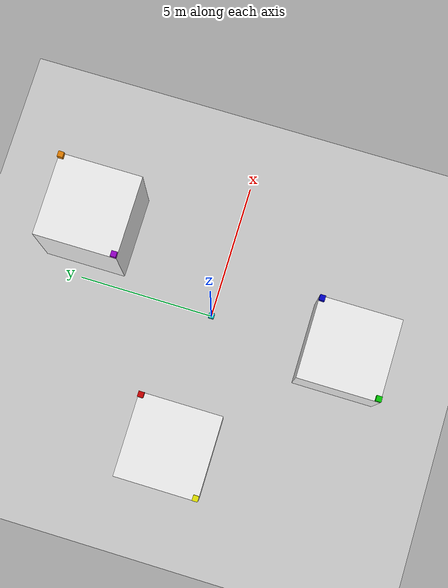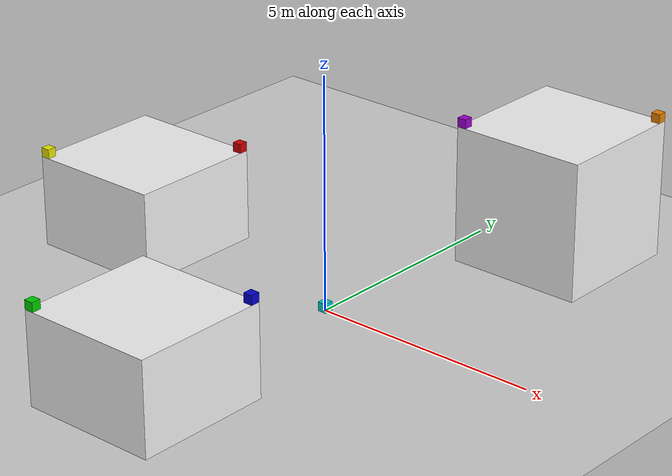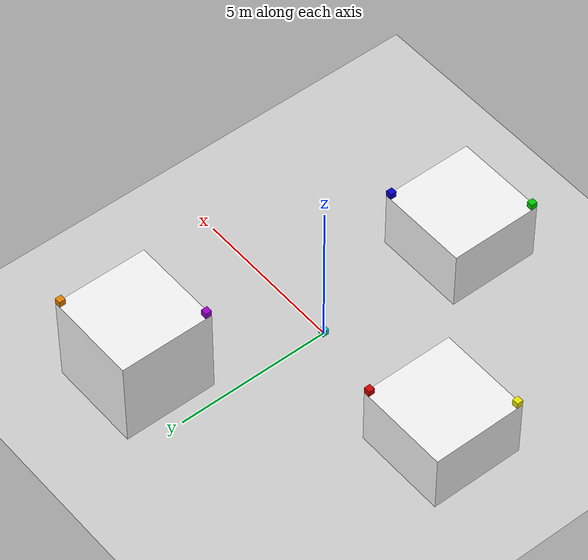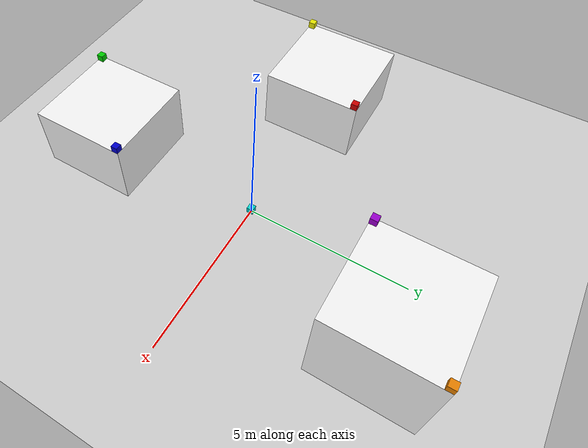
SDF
<?xml version="1.0" ?>

<sdf version="1.6">
  <world name="world_problem3">
    <physics name="4ms" type="ignored">
      <max_step_size>0.004</max_step_size>
      <real_time_factor>1.0</real_time_factor>
    </physics>
    <plugin
      filename="ignition-gazebo-physics-system"
      name="ignition::gazebo::systems::Physics">
    </plugin>
    <plugin
      filename="ignition-gazebo-scene-broadcaster-system"
      name="ignition::gazebo::systems::SceneBroadcaster">
    </plugin>
    <plugin
      filename="ignition-gazebo-user-commands-system"
      name="ignition::gazebo::systems::UserCommands">
    </plugin>
    <plugin
      filename="ignition-gazebo-sensors-system"
      name="ignition::gazebo::systems::Sensors">
      <render_engine>ogre2</render_engine>
    </plugin>
    <plugin
      filename="ignition-gazebo-contact-system"
      name="ignition::gazebo::systems::Contact">
    </plugin>

    <light type="directional" name="sun">
      <cast_shadows>true</cast_shadows>
      <pose>0 0 10 0 0 0</pose>
      <diffuse>0.8 0.8 0.8 1</diffuse>
      <specular>0.2 0.2 0.2 1</specular>
      <attenuation>
        <range>1000</range>
        <constant>0.9</constant>
        <linear>0.01</linear>
        <quadratic>0.001</quadratic>
      </attenuation>
      <direction>-0.5 0.1 -0.9</direction>
    </light>

    <include>
      <uri>model://ground_plane</uri>
    </include>

    <!-- OBSTACULOS                                                    -->

    <!-- Obstaculo 1: cubo 3x3x2, cara inferior centrada en (-5, 0) -->
    <!-- Centro del modelo en z = 1.0 (mitad de la altura) -->
    <model name="obstaculo_1">
      <static>true</static>
      <pose>-5 0 1.0 0 0 0</pose>
      <link name="obstaculo_1_link">
        <collision name="obstaculo_1_col">
          <geometry>
            <box>
              <size>3 3 2</size>
            </box>
          </geometry>
        </collision>
        <visual name="obstaculo_1_vis">
          <geometry>
            <box>
              <size>3 3 2</size>
            </box>
          </geometry>
          <material>
            <ambient>0.9 0.9 0.9 1</ambient>
            <diffuse>0.95 0.95 0.95 1</diffuse>
            <specular>0.3 0.3 0.3 1</specular>
          </material>
        </visual>
      </link>
    </model>

    <!-- Obstaculo 2: cubo 3x3x2, cara inferior centrada en (0, -5) -->
    <!-- Centro del modelo en z = 1.0 -->
    <model name="obstaculo_2">
      <static>true</static>
      <pose>0 -5 1.0 0 0 0</pose>
      <link name="obstaculo_2_link">
        <collision name="obstaculo_2_col">
          <geometry>
            <box>
              <size>3 3 2</size>
            </box>
          </geometry>
        </collision>
        <visual name="obstaculo_2_vis">
          <geometry>
            <box>
              <size>3 3 2</size>
            </box>
          </geometry>
          <material>
            <ambient>0.9 0.9 0.9 1</ambient>
            <diffuse>0.95 0.95 0.95 1</diffuse>
            <specular>0.3 0.3 0.3 1</specular>
          </material>
        </visual>
      </link>
    </model>

    <!-- Obstaculo 3: cubo 3x3x3, cara inferior centrada en (2, 5) -->
    <!-- Centro del modelo en z = 1.5 (mitad de la altura = 3/2) -->
    <model name="obstaculo_3">
      <static>true</static>
      <pose>2 5 1.5 0 0 0</pose>
      <link name="obstaculo_3_link">
        <collision name="obstaculo_3_col">
          <geometry>
            <box>
              <size>3 3 3</size>
            </box>
          </geometry>
        </collision>
        <visual name="obstaculo_3_vis">
          <geometry>
            <box>
              <size>3 3 3</size>
            </box>
          </geometry>
          <material>
            <ambient>0.9 0.9 0.9 1</ambient>
            <diffuse>0.95 0.95 0.95 1</diffuse>
            <specular>0.3 0.3 0.3 1</specular>
          </material>
        </visual>
      </link>
    </model>

    <!-- CUBOS DE COLORES (0.2 x 0.2 x 0.2)                            -->
    <!-- Apoyados sobre la cara superior del obstaculo, en una esquina -->
    <!-- (insertados 0.1 m hacia dentro: cara externa enrasada al borde)-->

    <!-- Obstaculo 1 (top z=2): 2 cubos -->

    <!-- ROJO: esquina (+x, +y) del obstaculo 1 -->
    <model name="cubo_rojo">
      <static>true</static>
      <pose>-3.6 1.4 2.1 0 0 0</pose>
      <link name="cubo_rojo_link">
        <collision name="cubo_rojo_col">
          <geometry>
            <box>
              <size>0.2 0.2 0.2</size>
            </box>
          </geometry>
        </collision>
        <visual name="cubo_rojo_vis">
          <geometry>
            <box>
              <size>0.2 0.2 0.2</size>
            </box>
          </geometry>
          <material>
            <ambient>0.5 0.0 0.0 1</ambient>
            <diffuse>0.8 0.0 0.0 1</diffuse>
            <specular>0.5 0.1 0.1 1</specular>
          </material>
        </visual>
      </link>
    </model>

    <!-- AMARILLO: esquina (-x, -y) del obstaculo 1 -->
    <model name="cubo_amarillo">
      <static>true</static>
      <pose>-6.4 -1.4 2.1 0 0 0</pose>
      <link name="cubo_amarillo_link">
        <collision name="cubo_amarillo_col">
          <geometry>
            <box>
              <size>0.2 0.2 0.2</size>
            </box>
          </geometry>
        </collision>
        <visual name="cubo_amarillo_vis">
          <geometry>
            <box>
              <size>0.2 0.2 0.2</size>
            </box>
          </geometry>
          <material>
            <ambient>0.5 0.5 0.0 1</ambient>
            <diffuse>0.9 0.9 0.0 1</diffuse>
            <specular>0.5 0.5 0.1 1</specular>
          </material>
        </visual>
      </link>
    </model>

    <!-- Obstaculo 2 (top z=2): 2 cubos -->

    <!-- AZUL: esquina (+x, +y hacia el centro) del obstaculo 2 -->
    <model name="cubo_azul">
      <static>true</static>
      <pose>1.4 -3.6 2.1 0 0 0</pose>
      <link name="cubo_azul_link">
        <collision name="cubo_azul_col">
          <geometry>
            <box>
              <size>0.2 0.2 0.2</size>
            </box>
          </geometry>
        </collision>
        <visual name="cubo_azul_vis">
          <geometry>
            <box>
              <size>0.2 0.2 0.2</size>
            </box>
          </geometry>
          <material>
            <ambient>0.0 0.0 0.5 1</ambient>
            <diffuse>0.0 0.0 0.8 1</diffuse>
            <specular>0.1 0.1 0.5 1</specular>
          </material>
        </visual>
      </link>
    </model>

    <!-- VERDE: esquina (-x, -y) del obstaculo 2 -->
    <model name="cubo_verde">
      <static>true</static>
      <pose>-1.4 -6.4 2.1 0 0 0</pose>
      <link name="cubo_verde_link">
        <collision name="cubo_verde_col">
          <geometry>
            <box>
              <size>0.2 0.2 0.2</size>
            </box>
          </geometry>
        </collision>
        <visual name="cubo_verde_vis">
          <geometry>
            <box>
              <size>0.2 0.2 0.2</size>
            </box>
          </geometry>
          <material>
            <ambient>0.0 0.5 0.0 1</ambient>
            <diffuse>0.0 0.8 0.0 1</diffuse>
            <specular>0.1 0.5 0.1 1</specular>
          </material>
        </visual>
      </link>
    </model>

    <!-- Obstaculo 3 (top z=3): 2 cubos -->

    <!-- NARANJA: esquina (+x, +y hacia el centro) del obstaculo 3 -->
    <model name="cubo_naranja">
      <static>true</static>
      <pose>3.4 6.4 3.1 0 0 0</pose>
      <link name="cubo_naranja_link">
        <collision name="cubo_naranja_col">
          <geometry>
            <box>
              <size>0.2 0.2 0.2</size>
            </box>
          </geometry>
        </collision>
        <visual name="cubo_naranja_vis">
          <geometry>
            <box>
              <size>0.2 0.2 0.2</size>
            </box>
          </geometry>
          <material>
            <ambient>0.5 0.25 0.0 1</ambient>
            <diffuse>0.9 0.5 0.0 1</diffuse>
            <specular>0.5 0.3 0.1 1</specular>
          </material>
        </visual>
      </link>
    </model>

    <!-- MORADO: esquina (-x, -y) del obstaculo 3 -->
    <model name="cubo_morado">
      <static>true</static>
      <pose>0.6 3.6 3.1 0 0 0</pose>
      <link name="cubo_morado_link">
        <collision name="cubo_morado_col">
          <geometry>
            <box>
              <size>0.2 0.2 0.2</size>
            </box>
          </geometry>
        </collision>
        <visual name="cubo_morado_vis">
          <geometry>
            <box>
              <size>0.2 0.2 0.2</size>
            </box>
          </geometry>
          <material>
            <ambient>0.3 0.0 0.4 1</ambient>
            <diffuse>0.6 0.0 0.8 1</diffuse>
            <specular>0.3 0.1 0.5 1</specular>
          </material>
        </visual>
      </link>
    </model>

    <!-- Cubo suelto: cara inferior centrada en (0, 0) -->
    <!-- Centro del modelo en z = 0.1 (mitad de 0.2), apoyado en el suelo -->

    <!-- CIAN -->
    <model name="cubo_cian">
      <static>true</static>
      <pose>0 0 0.1 0 0 0</pose>
      <link name="cubo_cian_link">
        <collision name="cubo_cian_col">
          <geometry>
            <box>
              <size>0.2 0.2 0.2</size>
            </box>
          </geometry>
        </collision>
        <visual name="cubo_cian_vis">
          <geometry>
            <box>
              <size>0.2 0.2 0.2</size>
            </box>
          </geometry>
          <material>
            <ambient>0.0 0.5 0.5 1</ambient>
            <diffuse>0.0 0.8 0.8 1</diffuse>
            <specular>0.1 0.5 0.5 1</specular>
          </material>
        </visual>
      </link>
    </model>

  </world>
</sdf>
